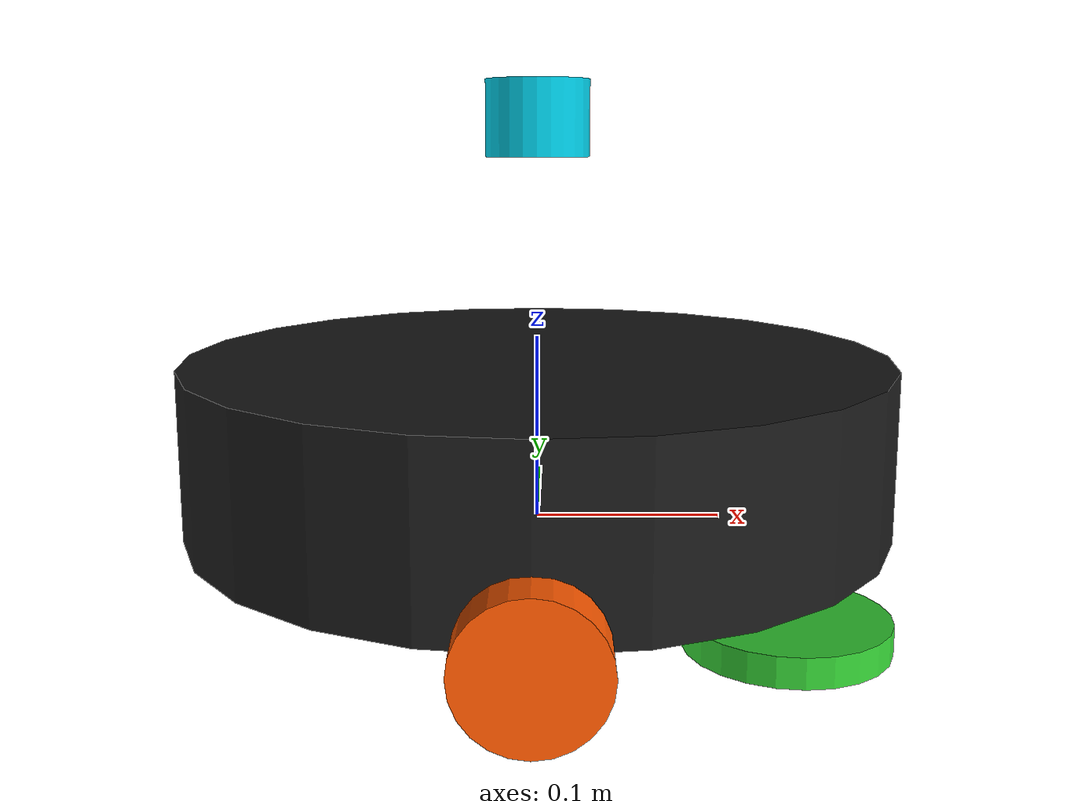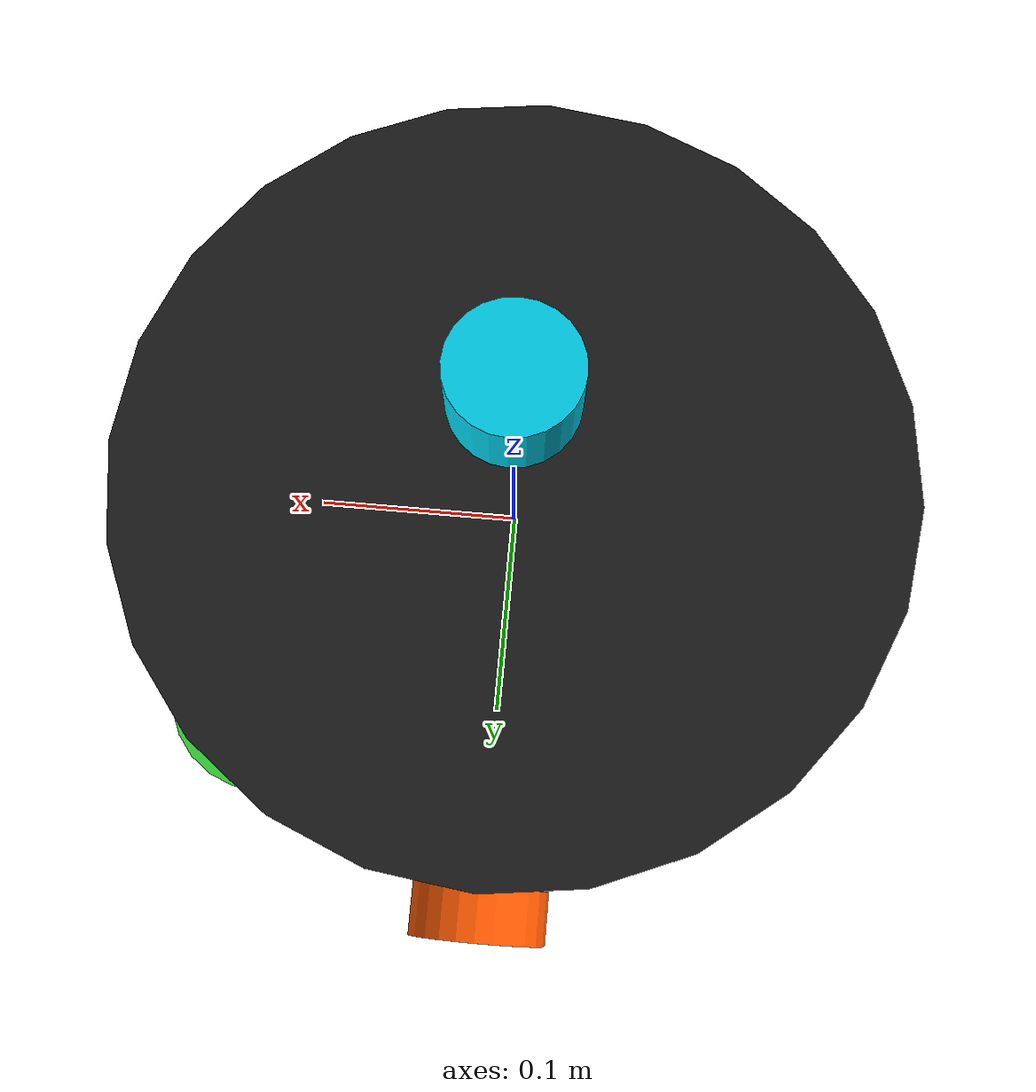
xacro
<?xml version="1.0"?>
<robot xmlns:xacro="http://www.ros.org/wiki/xacro" name="minibot">

  <xacro:arg name="use_ros2_control" default="true"/>

  <xacro:include filename="$(find minibot_description)/urdf/inertial_macros.xacro"/>
  <xacro:include filename="$(find minibot_description)/urdf/base.xacro"/>
  <xacro:include filename="$(find minibot_description)/urdf/lidar.xacro"/>
  <xacro:include filename="$(find minibot_description)/urdf/imu.xacro"/>

  <xacro:if value="$(arg use_ros2_control)">
    <xacro:include filename="$(find minibot_description)/urdf/ros2_control.xacro"/>
  </xacro:if>

</robot>

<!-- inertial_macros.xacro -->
<robot xmlns:xacro="http://www.ros.org/wiki/xacro">

  <xacro:macro name="inertial_cylinder" params="mass length radius *origin">
    <inertial>
      <xacro:insert_block name="origin"/>
      <mass value="${mass}"/>
      <inertia ixx="${(1/12) * mass * (3*radius*radius + length*length)}" ixy="0" ixz="0"
               iyy="${(1/12) * mass * (3*radius*radius + length*length)}" iyz="0"
               izz="${(1/2) * mass * (radius*radius)}"/>
    </inertial>
  </xacro:macro>

  <xacro:macro name="inertial_sphere" params="mass radius *origin">
    <inertial>
      <xacro:insert_block name="origin"/>
      <mass value="${mass}"/>
      <inertia ixx="${(2/5) * mass * (radius*radius)}" ixy="0" ixz="0"
               iyy="${(2/5) * mass * (radius*radius)}" iyz="0"
               izz="${(2/5) * mass * (radius*radius)}"/>
    </inertial>
  </xacro:macro>

</robot>

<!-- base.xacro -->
<robot xmlns:xacro="http://www.ros.org/wiki/xacro">

  <!-- ============ MUST MATCH robot.yaml ============ -->
  <xacro:property name="wheel_radius"     value="0.0336"/>   <!-- 67.2 mm dia -->
  <xacro:property name="wheel_separation" value="0.400"/>    <!-- centre-to-centre -->
  <xacro:property name="body_radius"      value="0.190"/>    <!-- the chassis disc -->

  <xacro:property name="body_height"      value="0.090"/>
  <xacro:property name="body_mass"        value="5.400"/>   <!-- 6 kg total - wheels/casters -->
  <xacro:property name="wheel_thickness"  value="0.026"/>
  <xacro:property name="wheel_mass"       value="0.250"/>
  <xacro:property name="wheel_offset_y"   value="${wheel_separation/2}"/>
  <xacro:property name="caster_radius"    value="0.0168"/>  <!-- HALF wheel_radius -->
  <xacro:property name="caster_offset_x"  value="0.150"/>

  <material name="black"><color rgba="0.1 0.1 0.1 1"/></material>
  <material name="orange"><color rgba="1 0.35 0 1"/></material>
  <material name="white"><color rgba="1 1 1 1"/></material>
  <material name="cyan"><color rgba="0 0.8 0.9 1"/></material>
  <material name="green"><color rgba="0.2 0.8 0.2 1"/></material>

  <link name="base_link"/>

  <!-- base_link is at the wheel AXLE, so the floor is wheel_radius BELOW it. -->
  <joint name="base_footprint_joint" type="fixed">
    <parent link="base_link"/>
    <child  link="base_footprint"/>
    <origin xyz="0 0 ${-wheel_radius}" rpy="0 0 0"/>
  </joint>
  <link name="base_footprint"/>

  <joint name="body_joint" type="fixed">
    <parent link="base_link"/>
    <child  link="body"/>
    <!-- The 90 mm body disc sits ABOVE the little wheels, not centred on the
         axle. Its centre is half its height above base_link. -->
    <origin xyz="0 0 ${body_height/2}" rpy="0 0 0"/>
  </joint>
  <link name="body">
    <visual>
      <geometry><cylinder radius="${body_radius}" length="${body_height}"/></geometry>
      <material name="black"/>
    </visual>
    <collision>
      <geometry><cylinder radius="${body_radius}" length="${body_height}"/></geometry>
    </collision>
    <xacro:inertial_cylinder mass="${body_mass}" radius="${body_radius}" length="${body_height}">
      <origin xyz="0 0 0" rpy="0 0 0"/>
    </xacro:inertial_cylinder>
  </link>

  <joint name="left_wheel_joint" type="continuous">
    <parent link="base_link"/>
    <child  link="left_wheel"/>
    <origin xyz="0 ${wheel_offset_y} 0" rpy="${-pi/2} 0 0"/>
    <axis   xyz="0 0 1"/>
  </joint>
  <link name="left_wheel">
    <visual>
      <geometry><cylinder radius="${wheel_radius}" length="${wheel_thickness}"/></geometry>
      <material name="orange"/>
    </visual>
    <collision><geometry><sphere radius="${wheel_radius}"/></geometry></collision>
    <xacro:inertial_cylinder mass="${wheel_mass}" radius="${wheel_radius}" length="${wheel_thickness}">
      <origin xyz="0 0 0" rpy="0 0 0"/>
    </xacro:inertial_cylinder>
  </link>

  <joint name="right_wheel_joint" type="continuous">
    <parent link="base_link"/>
    <child  link="right_wheel"/>
    <origin xyz="0 ${-wheel_offset_y} 0" rpy="${pi/2} 0 0"/>
    <axis   xyz="0 0 -1"/>
  </joint>
  <link name="right_wheel">
    <visual>
      <geometry><cylinder radius="${wheel_radius}" length="${wheel_thickness}"/></geometry>
      <material name="orange"/>
    </visual>
    <collision><geometry><sphere radius="${wheel_radius}"/></geometry></collision>
    <xacro:inertial_cylinder mass="${wheel_mass}" radius="${wheel_radius}" length="${wheel_thickness}">
      <origin xyz="0 0 0" rpy="0 0 0"/>
    </xacro:inertial_cylinder>
  </link>

  <!-- Casters are HALF the wheel radius, so their centres sit at
       (-wheel_radius + caster_radius) and their bottoms touch the floor. -->
  <xacro:macro name="caster" params="name x">
    <joint name="${name}_joint" type="fixed">
      <parent link="base_link"/>
      <child  link="${name}"/>
      <origin xyz="${x} 0 ${-wheel_radius + caster_radius}"/>
    </joint>
    <link name="${name}">
      <visual><geometry><sphere radius="${caster_radius}"/></geometry><material name="white"/></visual>
      <collision><geometry><sphere radius="${caster_radius}"/></geometry></collision>
      <xacro:inertial_sphere mass="0.03" radius="${caster_radius}">
        <origin xyz="0 0 0" rpy="0 0 0"/>
      </xacro:inertial_sphere>
    </link>
  </xacro:macro>

  <xacro:caster name="caster_front" x="${caster_offset_x}"/>
  <xacro:caster name="caster_rear"  x="${-caster_offset_x}"/>

  <xacro:property name="brush_radius"     value="0.050"/>
  <xacro:property name="brush_separation" value="0.200"/>
  <xacro:property name="brush_offset_x"   value="0.120"/>

  <xacro:macro name="brush" params="name y">
    <joint name="${name}_joint" type="fixed">
      <parent link="base_link"/>
      <child  link="${name}"/>
      <origin xyz="${brush_offset_x} ${y} ${-wheel_radius + 0.008}"/>
    </joint>
    <link name="${name}">
      <visual>
        <geometry><cylinder radius="${brush_radius}" length="0.015"/></geometry>
        <material name="green"/>
      </visual>
    </link>
  </xacro:macro>

  <xacro:brush name="brush_left"  y="${ brush_separation/2}"/>
  <xacro:brush name="brush_right" y="${-brush_separation/2}"/>

</robot>

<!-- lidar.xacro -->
<robot xmlns:xacro="http://www.ros.org/wiki/xacro">

  <!-- 0.250 m from the GROUND, minus the 0.0336 m axle height. GENERATED. -->
  <xacro:property name="lidar_z" value="0.2164"/>

  <joint name="lidar_joint" type="fixed">
    <parent link="base_link"/>
    <child  link="lidar_frame"/>
    <origin xyz="0 0 ${lidar_z}" rpy="0 0 3.14159"/>
  </joint>

  <link name="lidar_frame">
    <visual>
      <geometry><cylinder radius="0.0275" length="0.040"/></geometry>
      <material name="cyan"/>
    </visual>
    <collision><geometry><cylinder radius="0.0275" length="0.040"/></geometry></collision>
    <xacro:inertial_cylinder mass="0.1" radius="0.0275" length="0.040">
      <origin xyz="0 0 0" rpy="0 0 0"/>
    </xacro:inertial_cylinder>
  </link>

</robot>

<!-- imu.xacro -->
<robot xmlns:xacro="http://www.ros.org/wiki/xacro">

  <xacro:property name="imu_z" value="0.0264"/>

  <joint name="imu_joint" type="fixed">
    <parent link="base_link"/>
    <child  link="imu_link"/>
    <origin xyz="0.0 0.0 ${imu_z}" rpy="0 0 0"/>
  </joint>

  <link name="imu_link">
    <visual>
      <geometry><box size="0.021 0.016 0.003"/></geometry>
      <material name="cyan"/>
    </visual>
  </link>

</robot>
